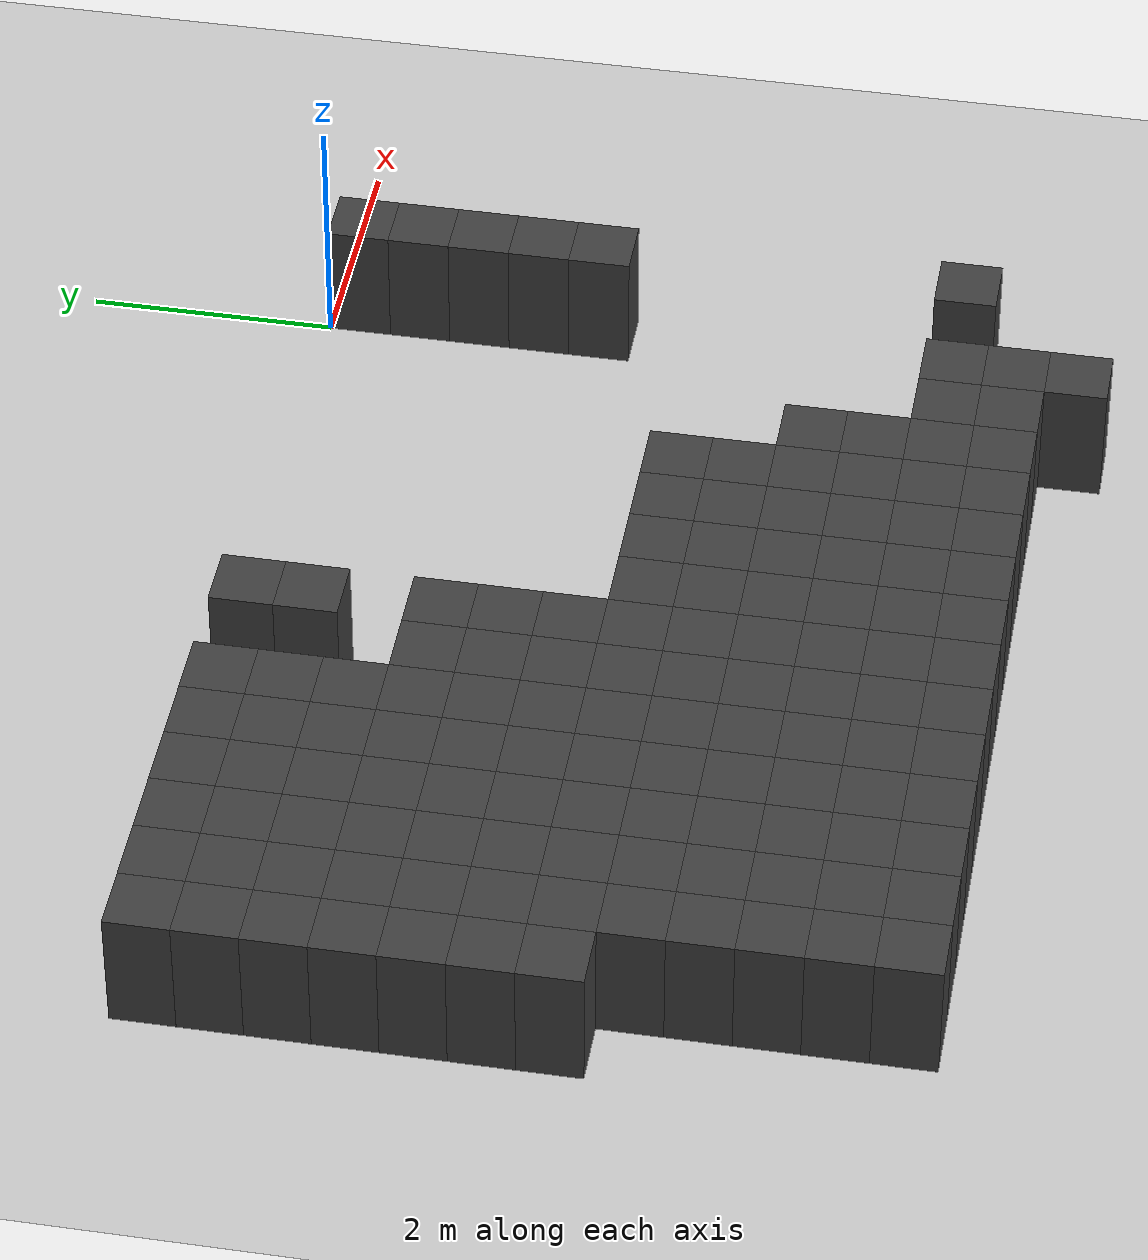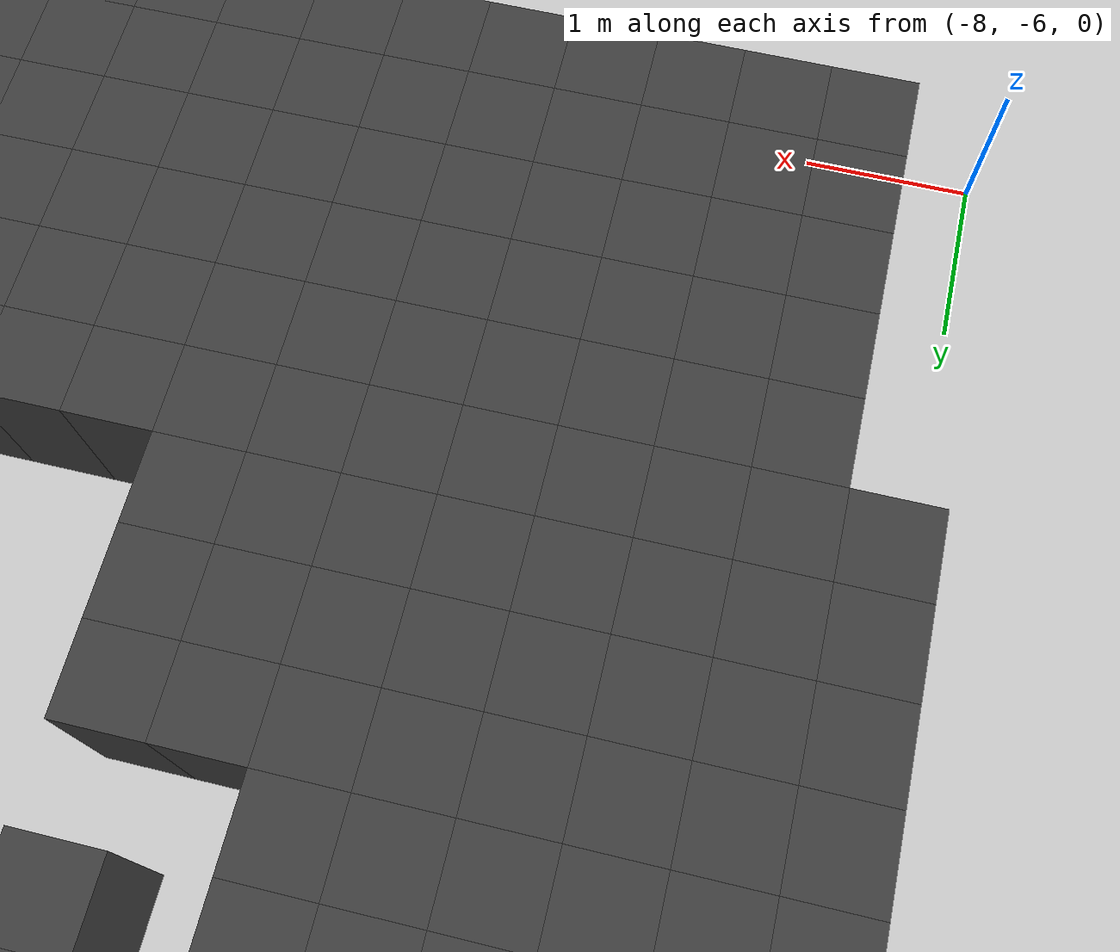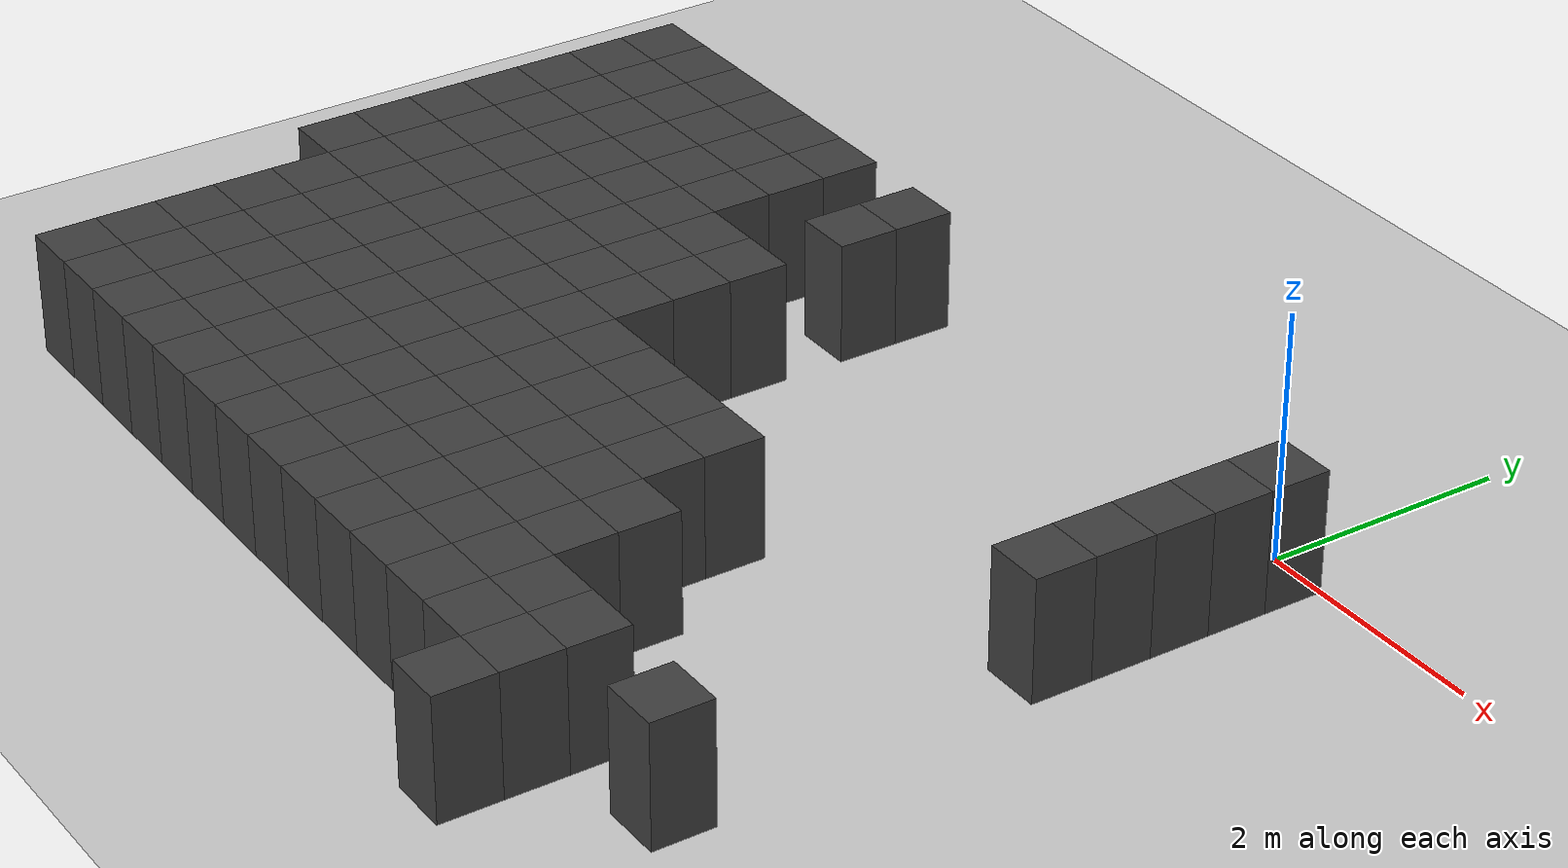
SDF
<sdf version="1.7">
 <world name="map_11779">
  <model name="ground_plane">
   <static>true</static>
   <link name="link">
    <collision name="collision">
     <geometry><plane><normal>0 0 1</normal><size>200 200</size></plane></geometry>
    </collision>
    <visual name="visual">
     <geometry><plane><normal>0 0 1</normal><size>200 200</size></plane></geometry>
     <material><ambient>0.8 0.8 0.8 1</ambient><diffuse>0.8 0.8 0.8 1</diffuse></material>
    </visual>
   </link>
  </model>
  <model name="maze_environment">
   <static>true</static>
   <link name="wall_1022">
    <pose>-7.750 -0.250 0.500 0 0 0</pose>
    <collision name="col"><geometry><box><size>0.5 0.5 1.0</size></box></geometry></collision>
    <visual name="vis">
     <geometry><box><size>0.5 0.5 1.0</size></box></geometry>
     <material><ambient>0.15 0.15 0.15 1</ambient><diffuse>0.25 0.25 0.25 1</diffuse></material>
    </visual>
   </link>
   <link name="wall_1023">
    <pose>-7.250 -0.250 0.500 0 0 0</pose>
    <collision name="col"><geometry><box><size>0.5 0.5 1.0</size></box></geometry></collision>
    <visual name="vis">
     <geometry><box><size>0.5 0.5 1.0</size></box></geometry>
     <material><ambient>0.15 0.15 0.15 1</ambient><diffuse>0.25 0.25 0.25 1</diffuse></material>
    </visual>
   </link>
   <link name="wall_1024">
    <pose>-6.750 -0.250 0.500 0 0 0</pose>
    <collision name="col"><geometry><box><size>0.5 0.5 1.0</size></box></geometry></collision>
    <visual name="vis">
     <geometry><box><size>0.5 0.5 1.0</size></box></geometry>
     <material><ambient>0.15 0.15 0.15 1</ambient><diffuse>0.25 0.25 0.25 1</diffuse></material>
    </visual>
   </link>
   <link name="wall_1025">
    <pose>-6.250 -0.250 0.500 0 0 0</pose>
    <collision name="col"><geometry><box><size>0.5 0.5 1.0</size></box></geometry></collision>
    <visual name="vis">
     <geometry><box><size>0.5 0.5 1.0</size></box></geometry>
     <material><ambient>0.15 0.15 0.15 1</ambient><diffuse>0.25 0.25 0.25 1</diffuse></material>
    </visual>
   </link>
   <link name="wall_1026">
    <pose>-5.750 -0.250 0.500 0 0 0</pose>
    <collision name="col"><geometry><box><size>0.5 0.5 1.0</size></box></geometry></collision>
    <visual name="vis">
     <geometry><box><size>0.5 0.5 1.0</size></box></geometry>
     <material><ambient>0.15 0.15 0.15 1</ambient><diffuse>0.25 0.25 0.25 1</diffuse></material>
    </visual>
   </link>
   <link name="wall_1027">
    <pose>-5.250 -0.250 0.500 0 0 0</pose>
    <collision name="col"><geometry><box><size>0.5 0.5 1.0</size></box></geometry></collision>
    <visual name="vis">
     <geometry><box><size>0.5 0.5 1.0</size></box></geometry>
     <material><ambient>0.15 0.15 0.15 1</ambient><diffuse>0.25 0.25 0.25 1</diffuse></material>
    </visual>
   </link>
   <link name="wall_1028">
    <pose>-4.250 -0.250 0.500 0 0 0</pose>
    <collision name="col"><geometry><box><size>0.5 0.5 1.0</size></box></geometry></collision>
    <visual name="vis">
     <geometry><box><size>0.5 0.5 1.0</size></box></geometry>
     <material><ambient>0.15 0.15 0.15 1</ambient><diffuse>0.25 0.25 0.25 1</diffuse></material>
    </visual>
   </link>
   <link name="wall_1029">
    <pose>0.250 -0.250 0.500 0 0 0</pose>
    <collision name="col"><geometry><box><size>0.5 0.5 1.0</size></box></geometry></collision>
    <visual name="vis">
     <geometry><box><size>0.5 0.5 1.0</size></box></geometry>
     <material><ambient>0.15 0.15 0.15 1</ambient><diffuse>0.25 0.25 0.25 1</diffuse></material>
    </visual>
   </link>
   <link name="wall_1063">
    <pose>-7.750 -0.750 0.500 0 0 0</pose>
    <collision name="col"><geometry><box><size>0.5 0.5 1.0</size></box></geometry></collision>
    <visual name="vis">
     <geometry><box><size>0.5 0.5 1.0</size></box></geometry>
     <material><ambient>0.15 0.15 0.15 1</ambient><diffuse>0.25 0.25 0.25 1</diffuse></material>
    </visual>
   </link>
   <link name="wall_1064">
    <pose>-7.250 -0.750 0.500 0 0 0</pose>
    <collision name="col"><geometry><box><size>0.5 0.5 1.0</size></box></geometry></collision>
    <visual name="vis">
     <geometry><box><size>0.5 0.5 1.0</size></box></geometry>
     <material><ambient>0.15 0.15 0.15 1</ambient><diffuse>0.25 0.25 0.25 1</diffuse></material>
    </visual>
   </link>
   <link name="wall_1065">
    <pose>-6.750 -0.750 0.500 0 0 0</pose>
    <collision name="col"><geometry><box><size>0.5 0.5 1.0</size></box></geometry></collision>
    <visual name="vis">
     <geometry><box><size>0.5 0.5 1.0</size></box></geometry>
     <material><ambient>0.15 0.15 0.15 1</ambient><diffuse>0.25 0.25 0.25 1</diffuse></material>
    </visual>
   </link>
   <link name="wall_1066">
    <pose>-6.250 -0.750 0.500 0 0 0</pose>
    <collision name="col"><geometry><box><size>0.5 0.5 1.0</size></box></geometry></collision>
    <visual name="vis">
     <geometry><box><size>0.5 0.5 1.0</size></box></geometry>
     <material><ambient>0.15 0.15 0.15 1</ambient><diffuse>0.25 0.25 0.25 1</diffuse></material>
    </visual>
   </link>
   <link name="wall_1067">
    <pose>-5.750 -0.750 0.500 0 0 0</pose>
    <collision name="col"><geometry><box><size>0.5 0.5 1.0</size></box></geometry></collision>
    <visual name="vis">
     <geometry><box><size>0.5 0.5 1.0</size></box></geometry>
     <material><ambient>0.15 0.15 0.15 1</ambient><diffuse>0.25 0.25 0.25 1</diffuse></material>
    </visual>
   </link>
   <link name="wall_1068">
    <pose>-5.250 -0.750 0.500 0 0 0</pose>
    <collision name="col"><geometry><box><size>0.5 0.5 1.0</size></box></geometry></collision>
    <visual name="vis">
     <geometry><box><size>0.5 0.5 1.0</size></box></geometry>
     <material><ambient>0.15 0.15 0.15 1</ambient><diffuse>0.25 0.25 0.25 1</diffuse></material>
    </visual>
   </link>
   <link name="wall_1069">
    <pose>-4.250 -0.750 0.500 0 0 0</pose>
    <collision name="col"><geometry><box><size>0.5 0.5 1.0</size></box></geometry></collision>
    <visual name="vis">
     <geometry><box><size>0.5 0.5 1.0</size></box></geometry>
     <material><ambient>0.15 0.15 0.15 1</ambient><diffuse>0.25 0.25 0.25 1</diffuse></material>
    </visual>
   </link>
   <link name="wall_1070">
    <pose>0.250 -0.750 0.500 0 0 0</pose>
    <collision name="col"><geometry><box><size>0.5 0.5 1.0</size></box></geometry></collision>
    <visual name="vis">
     <geometry><box><size>0.5 0.5 1.0</size></box></geometry>
     <material><ambient>0.15 0.15 0.15 1</ambient><diffuse>0.25 0.25 0.25 1</diffuse></material>
    </visual>
   </link>
   <link name="wall_1104">
    <pose>-7.750 -1.250 0.500 0 0 0</pose>
    <collision name="col"><geometry><box><size>0.5 0.5 1.0</size></box></geometry></collision>
    <visual name="vis">
     <geometry><box><size>0.5 0.5 1.0</size></box></geometry>
     <material><ambient>0.15 0.15 0.15 1</ambient><diffuse>0.25 0.25 0.25 1</diffuse></material>
    </visual>
   </link>
   <link name="wall_1105">
    <pose>-7.250 -1.250 0.500 0 0 0</pose>
    <collision name="col"><geometry><box><size>0.5 0.5 1.0</size></box></geometry></collision>
    <visual name="vis">
     <geometry><box><size>0.5 0.5 1.0</size></box></geometry>
     <material><ambient>0.15 0.15 0.15 1</ambient><diffuse>0.25 0.25 0.25 1</diffuse></material>
    </visual>
   </link>
   <link name="wall_1106">
    <pose>-6.750 -1.250 0.500 0 0 0</pose>
    <collision name="col"><geometry><box><size>0.5 0.5 1.0</size></box></geometry></collision>
    <visual name="vis">
     <geometry><box><size>0.5 0.5 1.0</size></box></geometry>
     <material><ambient>0.15 0.15 0.15 1</ambient><diffuse>0.25 0.25 0.25 1</diffuse></material>
    </visual>
   </link>
   <link name="wall_1107">
    <pose>-6.250 -1.250 0.500 0 0 0</pose>
    <collision name="col"><geometry><box><size>0.5 0.5 1.0</size></box></geometry></collision>
    <visual name="vis">
     <geometry><box><size>0.5 0.5 1.0</size></box></geometry>
     <material><ambient>0.15 0.15 0.15 1</ambient><diffuse>0.25 0.25 0.25 1</diffuse></material>
    </visual>
   </link>
   <link name="wall_1108">
    <pose>-5.750 -1.250 0.500 0 0 0</pose>
    <collision name="col"><geometry><box><size>0.5 0.5 1.0</size></box></geometry></collision>
    <visual name="vis">
     <geometry><box><size>0.5 0.5 1.0</size></box></geometry>
     <material><ambient>0.15 0.15 0.15 1</ambient><diffuse>0.25 0.25 0.25 1</diffuse></material>
    </visual>
   </link>
   <link name="wall_1109">
    <pose>-5.250 -1.250 0.500 0 0 0</pose>
    <collision name="col"><geometry><box><size>0.5 0.5 1.0</size></box></geometry></collision>
    <visual name="vis">
     <geometry><box><size>0.5 0.5 1.0</size></box></geometry>
     <material><ambient>0.15 0.15 0.15 1</ambient><diffuse>0.25 0.25 0.25 1</diffuse></material>
    </visual>
   </link>
   <link name="wall_1110">
    <pose>0.250 -1.250 0.500 0 0 0</pose>
    <collision name="col"><geometry><box><size>0.5 0.5 1.0</size></box></geometry></collision>
    <visual name="vis">
     <geometry><box><size>0.5 0.5 1.0</size></box></geometry>
     <material><ambient>0.15 0.15 0.15 1</ambient><diffuse>0.25 0.25 0.25 1</diffuse></material>
    </visual>
   </link>
   <link name="wall_1144">
    <pose>-7.750 -1.750 0.500 0 0 0</pose>
    <collision name="col"><geometry><box><size>0.5 0.5 1.0</size></box></geometry></collision>
    <visual name="vis">
     <geometry><box><size>0.5 0.5 1.0</size></box></geometry>
     <material><ambient>0.15 0.15 0.15 1</ambient><diffuse>0.25 0.25 0.25 1</diffuse></material>
    </visual>
   </link>
   <link name="wall_1145">
    <pose>-7.250 -1.750 0.500 0 0 0</pose>
    <collision name="col"><geometry><box><size>0.5 0.5 1.0</size></box></geometry></collision>
    <visual name="vis">
     <geometry><box><size>0.5 0.5 1.0</size></box></geometry>
     <material><ambient>0.15 0.15 0.15 1</ambient><diffuse>0.25 0.25 0.25 1</diffuse></material>
    </visual>
   </link>
   <link name="wall_1146">
    <pose>-6.750 -1.750 0.500 0 0 0</pose>
    <collision name="col"><geometry><box><size>0.5 0.5 1.0</size></box></geometry></collision>
    <visual name="vis">
     <geometry><box><size>0.5 0.5 1.0</size></box></geometry>
     <material><ambient>0.15 0.15 0.15 1</ambient><diffuse>0.25 0.25 0.25 1</diffuse></material>
    </visual>
   </link>
   <link name="wall_1147">
    <pose>-6.250 -1.750 0.500 0 0 0</pose>
    <collision name="col"><geometry><box><size>0.5 0.5 1.0</size></box></geometry></collision>
    <visual name="vis">
     <geometry><box><size>0.5 0.5 1.0</size></box></geometry>
     <material><ambient>0.15 0.15 0.15 1</ambient><diffuse>0.25 0.25 0.25 1</diffuse></material>
    </visual>
   </link>
   <link name="wall_1148">
    <pose>-5.750 -1.750 0.500 0 0 0</pose>
    <collision name="col"><geometry><box><size>0.5 0.5 1.0</size></box></geometry></collision>
    <visual name="vis">
     <geometry><box><size>0.5 0.5 1.0</size></box></geometry>
     <material><ambient>0.15 0.15 0.15 1</ambient><diffuse>0.25 0.25 0.25 1</diffuse></material>
    </visual>
   </link>
   <link name="wall_1149">
    <pose>-5.250 -1.750 0.500 0 0 0</pose>
    <collision name="col"><geometry><box><size>0.5 0.5 1.0</size></box></geometry></collision>
    <visual name="vis">
     <geometry><box><size>0.5 0.5 1.0</size></box></geometry>
     <material><ambient>0.15 0.15 0.15 1</ambient><diffuse>0.25 0.25 0.25 1</diffuse></material>
    </visual>
   </link>
   <link name="wall_1150">
    <pose>-4.750 -1.750 0.500 0 0 0</pose>
    <collision name="col"><geometry><box><size>0.5 0.5 1.0</size></box></geometry></collision>
    <visual name="vis">
     <geometry><box><size>0.5 0.5 1.0</size></box></geometry>
     <material><ambient>0.15 0.15 0.15 1</ambient><diffuse>0.25 0.25 0.25 1</diffuse></material>
    </visual>
   </link>
   <link name="wall_1151">
    <pose>-4.250 -1.750 0.500 0 0 0</pose>
    <collision name="col"><geometry><box><size>0.5 0.5 1.0</size></box></geometry></collision>
    <visual name="vis">
     <geometry><box><size>0.5 0.5 1.0</size></box></geometry>
     <material><ambient>0.15 0.15 0.15 1</ambient><diffuse>0.25 0.25 0.25 1</diffuse></material>
    </visual>
   </link>
   <link name="wall_1152">
    <pose>0.250 -1.750 0.500 0 0 0</pose>
    <collision name="col"><geometry><box><size>0.5 0.5 1.0</size></box></geometry></collision>
    <visual name="vis">
     <geometry><box><size>0.5 0.5 1.0</size></box></geometry>
     <material><ambient>0.15 0.15 0.15 1</ambient><diffuse>0.25 0.25 0.25 1</diffuse></material>
    </visual>
   </link>
   <link name="wall_1186">
    <pose>-7.750 -2.250 0.500 0 0 0</pose>
    <collision name="col"><geometry><box><size>0.5 0.5 1.0</size></box></geometry></collision>
    <visual name="vis">
     <geometry><box><size>0.5 0.5 1.0</size></box></geometry>
     <material><ambient>0.15 0.15 0.15 1</ambient><diffuse>0.25 0.25 0.25 1</diffuse></material>
    </visual>
   </link>
   <link name="wall_1187">
    <pose>-7.250 -2.250 0.500 0 0 0</pose>
    <collision name="col"><geometry><box><size>0.5 0.5 1.0</size></box></geometry></collision>
    <visual name="vis">
     <geometry><box><size>0.5 0.5 1.0</size></box></geometry>
     <material><ambient>0.15 0.15 0.15 1</ambient><diffuse>0.25 0.25 0.25 1</diffuse></material>
    </visual>
   </link>
   <link name="wall_1188">
    <pose>-6.750 -2.250 0.500 0 0 0</pose>
    <collision name="col"><geometry><box><size>0.5 0.5 1.0</size></box></geometry></collision>
    <visual name="vis">
     <geometry><box><size>0.5 0.5 1.0</size></box></geometry>
     <material><ambient>0.15 0.15 0.15 1</ambient><diffuse>0.25 0.25 0.25 1</diffuse></material>
    </visual>
   </link>
   <link name="wall_1189">
    <pose>-6.250 -2.250 0.500 0 0 0</pose>
    <collision name="col"><geometry><box><size>0.5 0.5 1.0</size></box></geometry></collision>
    <visual name="vis">
     <geometry><box><size>0.5 0.5 1.0</size></box></geometry>
     <material><ambient>0.15 0.15 0.15 1</ambient><diffuse>0.25 0.25 0.25 1</diffuse></material>
    </visual>
   </link>
   <link name="wall_1190">
    <pose>-5.750 -2.250 0.500 0 0 0</pose>
    <collision name="col"><geometry><box><size>0.5 0.5 1.0</size></box></geometry></collision>
    <visual name="vis">
     <geometry><box><size>0.5 0.5 1.0</size></box></geometry>
     <material><ambient>0.15 0.15 0.15 1</ambient><diffuse>0.25 0.25 0.25 1</diffuse></material>
    </visual>
   </link>
   <link name="wall_1191">
    <pose>-5.250 -2.250 0.500 0 0 0</pose>
    <collision name="col"><geometry><box><size>0.5 0.5 1.0</size></box></geometry></collision>
    <visual name="vis">
     <geometry><box><size>0.5 0.5 1.0</size></box></geometry>
     <material><ambient>0.15 0.15 0.15 1</ambient><diffuse>0.25 0.25 0.25 1</diffuse></material>
    </visual>
   </link>
   <link name="wall_1192">
    <pose>-4.750 -2.250 0.500 0 0 0</pose>
    <collision name="col"><geometry><box><size>0.5 0.5 1.0</size></box></geometry></collision>
    <visual name="vis">
     <geometry><box><size>0.5 0.5 1.0</size></box></geometry>
     <material><ambient>0.15 0.15 0.15 1</ambient><diffuse>0.25 0.25 0.25 1</diffuse></material>
    </visual>
   </link>
   <link name="wall_1193">
    <pose>-4.250 -2.250 0.500 0 0 0</pose>
    <collision name="col"><geometry><box><size>0.5 0.5 1.0</size></box></geometry></collision>
    <visual name="vis">
     <geometry><box><size>0.5 0.5 1.0</size></box></geometry>
     <material><ambient>0.15 0.15 0.15 1</ambient><diffuse>0.25 0.25 0.25 1</diffuse></material>
    </visual>
   </link>
   <link name="wall_1194">
    <pose>0.250 -2.250 0.500 0 0 0</pose>
    <collision name="col"><geometry><box><size>0.5 0.5 1.0</size></box></geometry></collision>
    <visual name="vis">
     <geometry><box><size>0.5 0.5 1.0</size></box></geometry>
     <material><ambient>0.15 0.15 0.15 1</ambient><diffuse>0.25 0.25 0.25 1</diffuse></material>
    </visual>
   </link>
   <link name="wall_1228">
    <pose>-7.750 -2.750 0.500 0 0 0</pose>
    <collision name="col"><geometry><box><size>0.5 0.5 1.0</size></box></geometry></collision>
    <visual name="vis">
     <geometry><box><size>0.5 0.5 1.0</size></box></geometry>
     <material><ambient>0.15 0.15 0.15 1</ambient><diffuse>0.25 0.25 0.25 1</diffuse></material>
    </visual>
   </link>
   <link name="wall_1229">
    <pose>-7.250 -2.750 0.500 0 0 0</pose>
    <collision name="col"><geometry><box><size>0.5 0.5 1.0</size></box></geometry></collision>
    <visual name="vis">
     <geometry><box><size>0.5 0.5 1.0</size></box></geometry>
     <material><ambient>0.15 0.15 0.15 1</ambient><diffuse>0.25 0.25 0.25 1</diffuse></material>
    </visual>
   </link>
   <link name="wall_1230">
    <pose>-6.750 -2.750 0.500 0 0 0</pose>
    <collision name="col"><geometry><box><size>0.5 0.5 1.0</size></box></geometry></collision>
    <visual name="vis">
     <geometry><box><size>0.5 0.5 1.0</size></box></geometry>
     <material><ambient>0.15 0.15 0.15 1</ambient><diffuse>0.25 0.25 0.25 1</diffuse></material>
    </visual>
   </link>
   <link name="wall_1231">
    <pose>-6.250 -2.750 0.500 0 0 0</pose>
    <collision name="col"><geometry><box><size>0.5 0.5 1.0</size></box></geometry></collision>
    <visual name="vis">
     <geometry><box><size>0.5 0.5 1.0</size></box></geometry>
     <material><ambient>0.15 0.15 0.15 1</ambient><diffuse>0.25 0.25 0.25 1</diffuse></material>
    </visual>
   </link>
   <link name="wall_1232">
    <pose>-5.750 -2.750 0.500 0 0 0</pose>
    <collision name="col"><geometry><box><size>0.5 0.5 1.0</size></box></geometry></collision>
    <visual name="vis">
     <geometry><box><size>0.5 0.5 1.0</size></box></geometry>
     <material><ambient>0.15 0.15 0.15 1</ambient><diffuse>0.25 0.25 0.25 1</diffuse></material>
    </visual>
   </link>
   <link name="wall_1233">
    <pose>-5.250 -2.750 0.500 0 0 0</pose>
    <collision name="col"><geometry><box><size>0.5 0.5 1.0</size></box></geometry></collision>
    <visual name="vis">
     <geometry><box><size>0.5 0.5 1.0</size></box></geometry>
     <material><ambient>0.15 0.15 0.15 1</ambient><diffuse>0.25 0.25 0.25 1</diffuse></material>
    </visual>
   </link>
   <link name="wall_1234">
    <pose>-4.750 -2.750 0.500 0 0 0</pose>
    <collision name="col"><geometry><box><size>0.5 0.5 1.0</size></box></geometry></collision>
    <visual name="vis">
     <geometry><box><size>0.5 0.5 1.0</size></box></geometry>
     <material><ambient>0.15 0.15 0.15 1</ambient><diffuse>0.25 0.25 0.25 1</diffuse></material>
    </visual>
   </link>
   <link name="wall_1235">
    <pose>-4.250 -2.750 0.500 0 0 0</pose>
    <collision name="col"><geometry><box><size>0.5 0.5 1.0</size></box></geometry></collision>
    <visual name="vis">
     <geometry><box><size>0.5 0.5 1.0</size></box></geometry>
     <material><ambient>0.15 0.15 0.15 1</ambient><diffuse>0.25 0.25 0.25 1</diffuse></material>
    </visual>
   </link>
   <link name="wall_1268">
    <pose>-7.750 -3.250 0.500 0 0 0</pose>
    <collision name="col"><geometry><box><size>0.5 0.5 1.0</size></box></geometry></collision>
    <visual name="vis">
     <geometry><box><size>0.5 0.5 1.0</size></box></geometry>
     <material><ambient>0.15 0.15 0.15 1</ambient><diffuse>0.25 0.25 0.25 1</diffuse></material>
    </visual>
   </link>
   <link name="wall_1269">
    <pose>-7.250 -3.250 0.500 0 0 0</pose>
    <collision name="col"><geometry><box><size>0.5 0.5 1.0</size></box></geometry></collision>
    <visual name="vis">
     <geometry><box><size>0.5 0.5 1.0</size></box></geometry>
     <material><ambient>0.15 0.15 0.15 1</ambient><diffuse>0.25 0.25 0.25 1</diffuse></material>
    </visual>
   </link>
   <link name="wall_1270">
    <pose>-6.750 -3.250 0.500 0 0 0</pose>
    <collision name="col"><geometry><box><size>0.5 0.5 1.0</size></box></geometry></collision>
    <visual name="vis">
     <geometry><box><size>0.5 0.5 1.0</size></box></geometry>
     <material><ambient>0.15 0.15 0.15 1</ambient><diffuse>0.25 0.25 0.25 1</diffuse></material>
    </visual>
   </link>
   <link name="wall_1271">
    <pose>-6.250 -3.250 0.500 0 0 0</pose>
    <collision name="col"><geometry><box><size>0.5 0.5 1.0</size></box></geometry></collision>
    <visual name="vis">
     <geometry><box><size>0.5 0.5 1.0</size></box></geometry>
     <material><ambient>0.15 0.15 0.15 1</ambient><diffuse>0.25 0.25 0.25 1</diffuse></material>
    </visual>
   </link>
   <link name="wall_1272">
    <pose>-5.750 -3.250 0.500 0 0 0</pose>
    <collision name="col"><geometry><box><size>0.5 0.5 1.0</size></box></geometry></collision>
    <visual name="vis">
     <geometry><box><size>0.5 0.5 1.0</size></box></geometry>
     <material><ambient>0.15 0.15 0.15 1</ambient><diffuse>0.25 0.25 0.25 1</diffuse></material>
    </visual>
   </link>
   <link name="wall_1273">
    <pose>-5.250 -3.250 0.500 0 0 0</pose>
    <collision name="col"><geometry><box><size>0.5 0.5 1.0</size></box></geometry></collision>
    <visual name="vis">
     <geometry><box><size>0.5 0.5 1.0</size></box></geometry>
     <material><ambient>0.15 0.15 0.15 1</ambient><diffuse>0.25 0.25 0.25 1</diffuse></material>
    </visual>
   </link>
   <link name="wall_1274">
    <pose>-4.750 -3.250 0.500 0 0 0</pose>
    <collision name="col"><geometry><box><size>0.5 0.5 1.0</size></box></geometry></collision>
    <visual name="vis">
     <geometry><box><size>0.5 0.5 1.0</size></box></geometry>
     <material><ambient>0.15 0.15 0.15 1</ambient><diffuse>0.25 0.25 0.25 1</diffuse></material>
    </visual>
   </link>
   <link name="wall_1275">
    <pose>-4.250 -3.250 0.500 0 0 0</pose>
    <collision name="col"><geometry><box><size>0.5 0.5 1.0</size></box></geometry></collision>
    <visual name="vis">
     <geometry><box><size>0.5 0.5 1.0</size></box></geometry>
     <material><ambient>0.15 0.15 0.15 1</ambient><diffuse>0.25 0.25 0.25 1</diffuse></material>
    </visual>
   </link>
   <link name="wall_1276">
    <pose>-3.750 -3.250 0.500 0 0 0</pose>
    <collision name="col"><geometry><box><size>0.5 0.5 1.0</size></box></geometry></collision>
    <visual name="vis">
     <geometry><box><size>0.5 0.5 1.0</size></box></geometry>
     <material><ambient>0.15 0.15 0.15 1</ambient><diffuse>0.25 0.25 0.25 1</diffuse></material>
    </visual>
   </link>
   <link name="wall_1277">
    <pose>-3.250 -3.250 0.500 0 0 0</pose>
    <collision name="col"><geometry><box><size>0.5 0.5 1.0</size></box></geometry></collision>
    <visual name="vis">
     <geometry><box><size>0.5 0.5 1.0</size></box></geometry>
     <material><ambient>0.15 0.15 0.15 1</ambient><diffuse>0.25 0.25 0.25 1</diffuse></material>
    </visual>
   </link>
   <link name="wall_1278">
    <pose>-2.750 -3.250 0.500 0 0 0</pose>
    <collision name="col"><geometry><box><size>0.5 0.5 1.0</size></box></geometry></collision>
    <visual name="vis">
     <geometry><box><size>0.5 0.5 1.0</size></box></geometry>
     <material><ambient>0.15 0.15 0.15 1</ambient><diffuse>0.25 0.25 0.25 1</diffuse></material>
    </visual>
   </link>
   <link name="wall_1279">
    <pose>-2.250 -3.250 0.500 0 0 0</pose>
    <collision name="col"><geometry><box><size>0.5 0.5 1.0</size></box></geometry></collision>
    <visual name="vis">
     <geometry><box><size>0.5 0.5 1.0</size></box></geometry>
     <material><ambient>0.15 0.15 0.15 1</ambient><diffuse>0.25 0.25 0.25 1</diffuse></material>
    </visual>
   </link>
   <link name="wall_1313">
    <pose>-7.250 -3.750 0.500 0 0 0</pose>
    <collision name="col"><geometry><box><size>0.5 0.5 1.0</size></box></geometry></collision>
    <visual name="vis">
     <geometry><box><size>0.5 0.5 1.0</size></box></geometry>
     <material><ambient>0.15 0.15 0.15 1</ambient><diffuse>0.25 0.25 0.25 1</diffuse></material>
    </visual>
   </link>
   <link name="wall_1314">
    <pose>-6.750 -3.750 0.500 0 0 0</pose>
    <collision name="col"><geometry><box><size>0.5 0.5 1.0</size></box></geometry></collision>
    <visual name="vis">
     <geometry><box><size>0.5 0.5 1.0</size></box></geometry>
     <material><ambient>0.15 0.15 0.15 1</ambient><diffuse>0.25 0.25 0.25 1</diffuse></material>
    </visual>
   </link>
   <link name="wall_1315">
    <pose>-6.250 -3.750 0.500 0 0 0</pose>
    <collision name="col"><geometry><box><size>0.5 0.5 1.0</size></box></geometry></collision>
    <visual name="vis">
     <geometry><box><size>0.5 0.5 1.0</size></box></geometry>
     <material><ambient>0.15 0.15 0.15 1</ambient><diffuse>0.25 0.25 0.25 1</diffuse></material>
    </visual>
   </link>
   <link name="wall_1316">
    <pose>-5.750 -3.750 0.500 0 0 0</pose>
    <collision name="col"><geometry><box><size>0.5 0.5 1.0</size></box></geometry></collision>
    <visual name="vis">
     <geometry><box><size>0.5 0.5 1.0</size></box></geometry>
     <material><ambient>0.15 0.15 0.15 1</ambient><diffuse>0.25 0.25 0.25 1</diffuse></material>
    </visual>
   </link>
   <link name="wall_1317">
    <pose>-5.250 -3.750 0.500 0 0 0</pose>
    <collision name="col"><geometry><box><size>0.5 0.5 1.0</size></box></geometry></collision>
    <visual name="vis">
     <geometry><box><size>0.5 0.5 1.0</size></box></geometry>
     <material><ambient>0.15 0.15 0.15 1</ambient><diffuse>0.25 0.25 0.25 1</diffuse></material>
    </visual>
   </link>
   <link name="wall_1318">
    <pose>-4.750 -3.750 0.500 0 0 0</pose>
    <collision name="col"><geometry><box><size>0.5 0.5 1.0</size></box></geometry></collision>
    <visual name="vis">
     <geometry><box><size>0.5 0.5 1.0</size></box></geometry>
     <material><ambient>0.15 0.15 0.15 1</ambient><diffuse>0.25 0.25 0.25 1</diffuse></material>
    </visual>
   </link>
   <link name="wall_1319">
    <pose>-4.250 -3.750 0.500 0 0 0</pose>
    <collision name="col"><geometry><box><size>0.5 0.5 1.0</size></box></geometry></collision>
    <visual name="vis">
     <geometry><box><size>0.5 0.5 1.0</size></box></geometry>
     <material><ambient>0.15 0.15 0.15 1</ambient><diffuse>0.25 0.25 0.25 1</diffuse></material>
    </visual>
   </link>
   <link name="wall_1320">
    <pose>-3.750 -3.750 0.500 0 0 0</pose>
    <collision name="col"><geometry><box><size>0.5 0.5 1.0</size></box></geometry></collision>
    <visual name="vis">
     <geometry><box><size>0.5 0.5 1.0</size></box></geometry>
     <material><ambient>0.15 0.15 0.15 1</ambient><diffuse>0.25 0.25 0.25 1</diffuse></material>
    </visual>
   </link>
   <link name="wall_1321">
    <pose>-3.250 -3.750 0.500 0 0 0</pose>
    <collision name="col"><geometry><box><size>0.5 0.5 1.0</size></box></geometry></collision>
    <visual name="vis">
     <geometry><box><size>0.5 0.5 1.0</size></box></geometry>
     <material><ambient>0.15 0.15 0.15 1</ambient><diffuse>0.25 0.25 0.25 1</diffuse></material>
    </visual>
   </link>
   <link name="wall_1322">
    <pose>-2.750 -3.750 0.500 0 0 0</pose>
    <collision name="col"><geometry><box><size>0.5 0.5 1.0</size></box></geometry></collision>
    <visual name="vis">
     <geometry><box><size>0.5 0.5 1.0</size></box></geometry>
     <material><ambient>0.15 0.15 0.15 1</ambient><diffuse>0.25 0.25 0.25 1</diffuse></material>
    </visual>
   </link>
   <link name="wall_1323">
    <pose>-2.250 -3.750 0.500 0 0 0</pose>
    <collision name="col"><geometry><box><size>0.5 0.5 1.0</size></box></geometry></collision>
    <visual name="vis">
     <geometry><box><size>0.5 0.5 1.0</size></box></geometry>
     <material><ambient>0.15 0.15 0.15 1</ambient><diffuse>0.25 0.25 0.25 1</diffuse></material>
    </visual>
   </link>
   <link name="wall_1357">
    <pose>-7.250 -4.250 0.500 0 0 0</pose>
    <collision name="col"><geometry><box><size>0.5 0.5 1.0</size></box></geometry></collision>
    <visual name="vis">
     <geometry><box><size>0.5 0.5 1.0</size></box></geometry>
     <material><ambient>0.15 0.15 0.15 1</ambient><diffuse>0.25 0.25 0.25 1</diffuse></material>
    </visual>
   </link>
   <link name="wall_1358">
    <pose>-6.750 -4.250 0.500 0 0 0</pose>
    <collision name="col"><geometry><box><size>0.5 0.5 1.0</size></box></geometry></collision>
    <visual name="vis">
     <geometry><box><size>0.5 0.5 1.0</size></box></geometry>
     <material><ambient>0.15 0.15 0.15 1</ambient><diffuse>0.25 0.25 0.25 1</diffuse></material>
    </visual>
   </link>
   <link name="wall_1359">
    <pose>-6.250 -4.250 0.500 0 0 0</pose>
    <collision name="col"><geometry><box><size>0.5 0.5 1.0</size></box></geometry></collision>
    <visual name="vis">
     <geometry><box><size>0.5 0.5 1.0</size></box></geometry>
     <material><ambient>0.15 0.15 0.15 1</ambient><diffuse>0.25 0.25 0.25 1</diffuse></material>
    </visual>
   </link>
   <link name="wall_1360">
    <pose>-5.750 -4.250 0.500 0 0 0</pose>
    <collision name="col"><geometry><box><size>0.5 0.5 1.0</size></box></geometry></collision>
    <visual name="vis">
     <geometry><box><size>0.5 0.5 1.0</size></box></geometry>
     <material><ambient>0.15 0.15 0.15 1</ambient><diffuse>0.25 0.25 0.25 1</diffuse></material>
    </visual>
   </link>
   <link name="wall_1361">
    <pose>-5.250 -4.250 0.500 0 0 0</pose>
    <collision name="col"><geometry><box><size>0.5 0.5 1.0</size></box></geometry></collision>
    <visual name="vis">
     <geometry><box><size>0.5 0.5 1.0</size></box></geometry>
     <material><ambient>0.15 0.15 0.15 1</ambient><diffuse>0.25 0.25 0.25 1</diffuse></material>
    </visual>
   </link>
   <link name="wall_1362">
    <pose>-4.750 -4.250 0.500 0 0 0</pose>
    <collision name="col"><geometry><box><size>0.5 0.5 1.0</size></box></geometry></collision>
    <visual name="vis">
     <geometry><box><size>0.5 0.5 1.0</size></box></geometry>
     <material><ambient>0.15 0.15 0.15 1</ambient><diffuse>0.25 0.25 0.25 1</diffuse></material>
    </visual>
   </link>
   <link name="wall_1363">
    <pose>-4.250 -4.250 0.500 0 0 0</pose>
    <collision name="col"><geometry><box><size>0.5 0.5 1.0</size></box></geometry></collision>
    <visual name="vis">
     <geometry><box><size>0.5 0.5 1.0</size></box></geometry>
     <material><ambient>0.15 0.15 0.15 1</ambient><diffuse>0.25 0.25 0.25 1</diffuse></material>
    </visual>
   </link>
   <link name="wall_1364">
    <pose>-3.750 -4.250 0.500 0 0 0</pose>
    <collision name="col"><geometry><box><size>0.5 0.5 1.0</size></box></geometry></collision>
    <visual name="vis">
     <geometry><box><size>0.5 0.5 1.0</size></box></geometry>
     <material><ambient>0.15 0.15 0.15 1</ambient><diffuse>0.25 0.25 0.25 1</diffuse></material>
    </visual>
   </link>
   <link name="wall_1365">
    <pose>-3.250 -4.250 0.500 0 0 0</pose>
    <collision name="col"><geometry><box><size>0.5 0.5 1.0</size></box></geometry></collision>
    <visual name="vis">
     <geometry><box><size>0.5 0.5 1.0</size></box></geometry>
     <material><ambient>0.15 0.15 0.15 1</ambient><diffuse>0.25 0.25 0.25 1</diffuse></material>
    </visual>
   </link>
   <link name="wall_1366">
    <pose>-2.750 -4.250 0.500 0 0 0</pose>
    <collision name="col"><geometry><box><size>0.5 0.5 1.0</size></box></geometry></collision>
    <visual name="vis">
     <geometry><box><size>0.5 0.5 1.0</size></box></geometry>
     <material><ambient>0.15 0.15 0.15 1</ambient><diffuse>0.25 0.25 0.25 1</diffuse></material>
    </visual>
   </link>
   <link name="wall_1367">
    <pose>-2.250 -4.250 0.500 0 0 0</pose>
    <collision name="col"><geometry><box><size>0.5 0.5 1.0</size></box></geometry></collision>
    <visual name="vis">
     <geometry><box><size>0.5 0.5 1.0</size></box></geometry>
     <material><ambient>0.15 0.15 0.15 1</ambient><diffuse>0.25 0.25 0.25 1</diffuse></material>
    </visual>
   </link>
   <link name="wall_1368">
    <pose>-1.750 -4.250 0.500 0 0 0</pose>
    <collision name="col"><geometry><box><size>0.5 0.5 1.0</size></box></geometry></collision>
    <visual name="vis">
     <geometry><box><size>0.5 0.5 1.0</size></box></geometry>
     <material><ambient>0.15 0.15 0.15 1</ambient><diffuse>0.25 0.25 0.25 1</diffuse></material>
    </visual>
   </link>
   <link name="wall_1402">
    <pose>-7.250 -4.750 0.500 0 0 0</pose>
    <collision name="col"><geometry><box><size>0.5 0.5 1.0</size></box></geometry></collision>
    <visual name="vis">
     <geometry><box><size>0.5 0.5 1.0</size></box></geometry>
     <material><ambient>0.15 0.15 0.15 1</ambient><diffuse>0.25 0.25 0.25 1</diffuse></material>
    </visual>
   </link>
   <link name="wall_1403">
    <pose>-6.750 -4.750 0.500 0 0 0</pose>
    <collision name="col"><geometry><box><size>0.5 0.5 1.0</size></box></geometry></collision>
    <visual name="vis">
     <geometry><box><size>0.5 0.5 1.0</size></box></geometry>
     <material><ambient>0.15 0.15 0.15 1</ambient><diffuse>0.25 0.25 0.25 1</diffuse></material>
    </visual>
   </link>
   <link name="wall_1404">
    <pose>-6.250 -4.750 0.500 0 0 0</pose>
    <collision name="col"><geometry><box><size>0.5 0.5 1.0</size></box></geometry></collision>
    <visual name="vis">
     <geometry><box><size>0.5 0.5 1.0</size></box></geometry>
     <material><ambient>0.15 0.15 0.15 1</ambient><diffuse>0.25 0.25 0.25 1</diffuse></material>
    </visual>
   </link>
   <link name="wall_1405">
    <pose>-5.750 -4.750 0.500 0 0 0</pose>
    <collision name="col"><geometry><box><size>0.5 0.5 1.0</size></box></geometry></collision>
    <visual name="vis">
     <geometry><box><size>0.5 0.5 1.0</size></box></geometry>
     <material><ambient>0.15 0.15 0.15 1</ambient><diffuse>0.25 0.25 0.25 1</diffuse></material>
    </visual>
   </link>
   <link name="wall_1406">
    <pose>-5.250 -4.750 0.500 0 0 0</pose>
    <collision name="col"><geometry><box><size>0.5 0.5 1.0</size></box></geometry></collision>
    <visual name="vis">
     <geometry><box><size>0.5 0.5 1.0</size></box></geometry>
     <material><ambient>0.15 0.15 0.15 1</ambient><diffuse>0.25 0.25 0.25 1</diffuse></material>
    </visual>
   </link>
   <link name="wall_1407">
    <pose>-4.750 -4.750 0.500 0 0 0</pose>
    <collision name="col"><geometry><box><size>0.5 0.5 1.0</size></box></geometry></collision>
    <visual name="vis">
     <geometry><box><size>0.5 0.5 1.0</size></box></geometry>
     <material><ambient>0.15 0.15 0.15 1</ambient><diffuse>0.25 0.25 0.25 1</diffuse></material>
    </visual>
   </link>
   <link name="wall_1408">
    <pose>-4.250 -4.750 0.500 0 0 0</pose>
    <collision name="col"><geometry><box><size>0.5 0.5 1.0</size></box></geometry></collision>
    <visual name="vis">
     <geometry><box><size>0.5 0.5 1.0</size></box></geometry>
     <material><ambient>0.15 0.15 0.15 1</ambient><diffuse>0.25 0.25 0.25 1</diffuse></material>
    </visual>
   </link>
   <link name="wall_1409">
    <pose>-3.750 -4.750 0.500 0 0 0</pose>
    <collision name="col"><geometry><box><size>0.5 0.5 1.0</size></box></geometry></collision>
    <visual name="vis">
     <geometry><box><size>0.5 0.5 1.0</size></box></geometry>
     <material><ambient>0.15 0.15 0.15 1</ambient><diffuse>0.25 0.25 0.25 1</diffuse></material>
    </visual>
   </link>
   <link name="wall_1410">
    <pose>-3.250 -4.750 0.500 0 0 0</pose>
    <collision name="col"><geometry><box><size>0.5 0.5 1.0</size></box></geometry></collision>
    <visual name="vis">
     <geometry><box><size>0.5 0.5 1.0</size></box></geometry>
     <material><ambient>0.15 0.15 0.15 1</ambient><diffuse>0.25 0.25 0.25 1</diffuse></material>
    </visual>
   </link>
   <link name="wall_1411">
    <pose>-2.750 -4.750 0.500 0 0 0</pose>
    <collision name="col"><geometry><box><size>0.5 0.5 1.0</size></box></geometry></collision>
    <visual name="vis">
     <geometry><box><size>0.5 0.5 1.0</size></box></geometry>
     <material><ambient>0.15 0.15 0.15 1</ambient><diffuse>0.25 0.25 0.25 1</diffuse></material>
    </visual>
   </link>
   <link name="wall_1412">
    <pose>-2.250 -4.750 0.500 0 0 0</pose>
    <collision name="col"><geometry><box><size>0.5 0.5 1.0</size></box></geometry></collision>
    <visual name="vis">
     <geometry><box><size>0.5 0.5 1.0</size></box></geometry>
     <material><ambient>0.15 0.15 0.15 1</ambient><diffuse>0.25 0.25 0.25 1</diffuse></material>
    </visual>
   </link>
   <link name="wall_1413">
    <pose>-1.750 -4.750 0.500 0 0 0</pose>
    <collision name="col"><geometry><box><size>0.5 0.5 1.0</size></box></geometry></collision>
    <visual name="vis">
     <geometry><box><size>0.5 0.5 1.0</size></box></geometry>
     <material><ambient>0.15 0.15 0.15 1</ambient><diffuse>0.25 0.25 0.25 1</diffuse></material>
    </visual>
   </link>
   <link name="wall_1447">
    <pose>-7.250 -5.250 0.500 0 0 0</pose>
    <collision name="col"><geometry><box><size>0.5 0.5 1.0</size></box></geometry></collision>
    <visual name="vis">
     <geometry><box><size>0.5 0.5 1.0</size></box></geometry>
     <material><ambient>0.15 0.15 0.15 1</ambient><diffuse>0.25 0.25 0.25 1</diffuse></material>
    </visual>
   </link>
   <link name="wall_1448">
    <pose>-6.750 -5.250 0.500 0 0 0</pose>
    <collision name="col"><geometry><box><size>0.5 0.5 1.0</size></box></geometry></collision>
    <visual name="vis">
     <geometry><box><size>0.5 0.5 1.0</size></box></geometry>
     <material><ambient>0.15 0.15 0.15 1</ambient><diffuse>0.25 0.25 0.25 1</diffuse></material>
    </visual>
   </link>
   <link name="wall_1449">
    <pose>-6.250 -5.250 0.500 0 0 0</pose>
    <collision name="col"><geometry><box><size>0.5 0.5 1.0</size></box></geometry></collision>
    <visual name="vis">
     <geometry><box><size>0.5 0.5 1.0</size></box></geometry>
     <material><ambient>0.15 0.15 0.15 1</ambient><diffuse>0.25 0.25 0.25 1</diffuse></material>
    </visual>
   </link>
   <link name="wall_1450">
    <pose>-5.750 -5.250 0.500 0 0 0</pose>
    <collision name="col"><geometry><box><size>0.5 0.5 1.0</size></box></geometry></collision>
    <visual name="vis">
     <geometry><box><size>0.5 0.5 1.0</size></box></geometry>
     <material><ambient>0.15 0.15 0.15 1</ambient><diffuse>0.25 0.25 0.25 1</diffuse></material>
    </visual>
   </link>
   <link name="wall_1451">
    <pose>-5.250 -5.250 0.500 0 0 0</pose>
    <collision name="col"><geometry><box><size>0.5 0.5 1.0</size></box></geometry></collision>
    <visual name="vis">
     <geometry><box><size>0.5 0.5 1.0</size></box></geometry>
     <material><ambient>0.15 0.15 0.15 1</ambient><diffuse>0.25 0.25 0.25 1</diffuse></material>
    </visual>
   </link>
   <link name="wall_1452">
    <pose>-4.750 -5.250 0.500 0 0 0</pose>
    <collision name="col"><geometry><box><size>0.5 0.5 1.0</size></box></geometry></collision>
    <visual name="vis">
     <geometry><box><size>0.5 0.5 1.0</size></box></geometry>
     <material><ambient>0.15 0.15 0.15 1</ambient><diffuse>0.25 0.25 0.25 1</diffuse></material>
    </visual>
   </link>
   <link name="wall_1453">
    <pose>-4.250 -5.250 0.500 0 0 0</pose>
    <collision name="col"><geometry><box><size>0.5 0.5 1.0</size></box></geometry></collision>
    <visual name="vis">
     <geometry><box><size>0.5 0.5 1.0</size></box></geometry>
     <material><ambient>0.15 0.15 0.15 1</ambient><diffuse>0.25 0.25 0.25 1</diffuse></material>
    </visual>
   </link>
   <link name="wall_1454">
    <pose>-3.750 -5.250 0.500 0 0 0</pose>
    <collision name="col"><geometry><box><size>0.5 0.5 1.0</size></box></geometry></collision>
    <visual name="vis">
     <geometry><box><size>0.5 0.5 1.0</size></box></geometry>
     <material><ambient>0.15 0.15 0.15 1</ambient><diffuse>0.25 0.25 0.25 1</diffuse></material>
    </visual>
   </link>
   <link name="wall_1455">
    <pose>-3.250 -5.250 0.500 0 0 0</pose>
    <collision name="col"><geometry><box><size>0.5 0.5 1.0</size></box></geometry></collision>
    <visual name="vis">
     <geometry><box><size>0.5 0.5 1.0</size></box></geometry>
     <material><ambient>0.15 0.15 0.15 1</ambient><diffuse>0.25 0.25 0.25 1</diffuse></material>
    </visual>
   </link>
   <link name="wall_1456">
    <pose>-2.750 -5.250 0.500 0 0 0</pose>
    <collision name="col"><geometry><box><size>0.5 0.5 1.0</size></box></geometry></collision>
    <visual name="vis">
     <geometry><box><size>0.5 0.5 1.0</size></box></geometry>
     <material><ambient>0.15 0.15 0.15 1</ambient><diffuse>0.25 0.25 0.25 1</diffuse></material>
    </visual>
   </link>
   <link name="wall_1457">
    <pose>-2.250 -5.250 0.500 0 0 0</pose>
    <collision name="col"><geometry><box><size>0.5 0.5 1.0</size></box></geometry></collision>
    <visual name="vis">
     <geometry><box><size>0.5 0.5 1.0</size></box></geometry>
     <material><ambient>0.15 0.15 0.15 1</ambient><diffuse>0.25 0.25 0.25 1</diffuse></material>
    </visual>
   </link>
   <link name="wall_1458">
    <pose>-1.750 -5.250 0.500 0 0 0</pose>
    <collision name="col"><geometry><box><size>0.5 0.5 1.0</size></box></geometry></collision>
    <visual name="vis">
     <geometry><box><size>0.5 0.5 1.0</size></box></geometry>
     <material><ambient>0.15 0.15 0.15 1</ambient><diffuse>0.25 0.25 0.25 1</diffuse></material>
    </visual>
   </link>
   <link name="wall_1459">
    <pose>-1.250 -5.250 0.500 0 0 0</pose>
    <collision name="col"><geometry><box><size>0.5 0.5 1.0</size></box></geometry></collision>
    <visual name="vis">
     <geometry><box><size>0.5 0.5 1.0</size></box></geometry>
     <material><ambient>0.15 0.15 0.15 1</ambient><diffuse>0.25 0.25 0.25 1</diffuse></material>
    </visual>
   </link>
   <link name="wall_1460">
    <pose>-0.750 -5.250 0.500 0 0 0</pose>
    <collision name="col"><geometry><box><size>0.5 0.5 1.0</size></box></geometry></collision>
    <visual name="vis">
     <geometry><box><size>0.5 0.5 1.0</size></box></geometry>
     <material><ambient>0.15 0.15 0.15 1</ambient><diffuse>0.25 0.25 0.25 1</diffuse></material>
    </visual>
   </link>
   <link name="wall_1461">
    <pose>0.250 -5.250 0.500 0 0 0</pose>
    <collision name="col"><geometry><box><size>0.5 0.5 1.0</size></box></geometry></collision>
    <visual name="vis">
     <geometry><box><size>0.5 0.5 1.0</size></box></geometry>
     <material><ambient>0.15 0.15 0.15 1</ambient><diffuse>0.25 0.25 0.25 1</diffuse></material>
    </visual>
   </link>
   <link name="wall_1496">
    <pose>-7.250 -5.750 0.500 0 0 0</pose>
    <collision name="col"><geometry><box><size>0.5 0.5 1.0</size></box></geometry></collision>
    <visual name="vis">
     <geometry><box><size>0.5 0.5 1.0</size></box></geometry>
     <material><ambient>0.15 0.15 0.15 1</ambient><diffuse>0.25 0.25 0.25 1</diffuse></material>
    </visual>
   </link>
   <link name="wall_1497">
    <pose>-6.750 -5.750 0.500 0 0 0</pose>
    <collision name="col"><geometry><box><size>0.5 0.5 1.0</size></box></geometry></collision>
    <visual name="vis">
     <geometry><box><size>0.5 0.5 1.0</size></box></geometry>
     <material><ambient>0.15 0.15 0.15 1</ambient><diffuse>0.25 0.25 0.25 1</diffuse></material>
    </visual>
   </link>
   <link name="wall_1498">
    <pose>-6.250 -5.750 0.500 0 0 0</pose>
    <collision name="col"><geometry><box><size>0.5 0.5 1.0</size></box></geometry></collision>
    <visual name="vis">
     <geometry><box><size>0.5 0.5 1.0</size></box></geometry>
     <material><ambient>0.15 0.15 0.15 1</ambient><diffuse>0.25 0.25 0.25 1</diffuse></material>
    </visual>
   </link>
   <link name="wall_1499">
    <pose>-5.750 -5.750 0.500 0 0 0</pose>
    <collision name="col"><geometry><box><size>0.5 0.5 1.0</size></box></geometry></collision>
    <visual name="vis">
     <geometry><box><size>0.5 0.5 1.0</size></box></geometry>
     <material><ambient>0.15 0.15 0.15 1</ambient><diffuse>0.25 0.25 0.25 1</diffuse></material>
    </visual>
   </link>
   <link name="wall_1500">
    <pose>-5.250 -5.750 0.500 0 0 0</pose>
    <collision name="col"><geometry><box><size>0.5 0.5 1.0</size></box></geometry></collision>
    <visual name="vis">
     <geometry><box><size>0.5 0.5 1.0</size></box></geometry>
     <material><ambient>0.15 0.15 0.15 1</ambient><diffuse>0.25 0.25 0.25 1</diffuse></material>
    </visual>
   </link>
   <link name="wall_1501">
    <pose>-4.750 -5.750 0.500 0 0 0</pose>
    <collision name="col"><geometry><box><size>0.5 0.5 1.0</size></box></geometry></collision>
    <visual name="vis">
     <geometry><box><size>0.5 0.5 1.0</size></box></geometry>
     <material><ambient>0.15 0.15 0.15 1</ambient><diffuse>0.25 0.25 0.25 1</diffuse></material>
    </visual>
   </link>
   <link name="wall_1502">
    <pose>-4.250 -5.750 0.500 0 0 0</pose>
    <collision name="col"><geometry><box><size>0.5 0.5 1.0</size></box></geometry></collision>
    <visual name="vis">
     <geometry><box><size>0.5 0.5 1.0</size></box></geometry>
     <material><ambient>0.15 0.15 0.15 1</ambient><diffuse>0.25 0.25 0.25 1</diffuse></material>
    </visual>
   </link>
   <link name="wall_1503">
    <pose>-3.750 -5.750 0.500 0 0 0</pose>
    <collision name="col"><geometry><box><size>0.5 0.5 1.0</size></box></geometry></collision>
    <visual name="vis">
     <geometry><box><size>0.5 0.5 1.0</size></box></geometry>
     <material><ambient>0.15 0.15 0.15 1</ambient><diffuse>0.25 0.25 0.25 1</diffuse></material>
    </visual>
   </link>
   <link name="wall_1504">
    <pose>-3.250 -5.750 0.500 0 0 0</pose>
    <collision name="col"><geometry><box><size>0.5 0.5 1.0</size></box></geometry></collision>
    <visual name="vis">
     <geometry><box><size>0.5 0.5 1.0</size></box></geometry>
     <material><ambient>0.15 0.15 0.15 1</ambient><diffuse>0.25 0.25 0.25 1</diffuse></material>
    </visual>
   </link>
   <link name="wall_1505">
    <pose>-2.750 -5.750 0.500 0 0 0</pose>
    <collision name="col"><geometry><box><size>0.5 0.5 1.0</size></box></geometry></collision>
    <visual name="vis">
     <geometry><box><size>0.5 0.5 1.0</size></box></geometry>
     <material><ambient>0.15 0.15 0.15 1</ambient><diffuse>0.25 0.25 0.25 1</diffuse></material>
    </visual>
   </link>
   <link name="wall_1506">
    <pose>-2.250 -5.750 0.500 0 0 0</pose>
    <collision name="col"><geometry><box><size>0.5 0.5 1.0</size></box></geometry></collision>
    <visual name="vis">
     <geometry><box><size>0.5 0.5 1.0</size></box></geometry>
     <material><ambient>0.15 0.15 0.15 1</ambient><diffuse>0.25 0.25 0.25 1</diffuse></material>
    </visual>
   </link>
   <link name="wall_1507">
    <pose>-1.750 -5.750 0.500 0 0 0</pose>
    <collision name="col"><geometry><box><size>0.5 0.5 1.0</size></box></geometry></collision>
    <visual name="vis">
     <geometry><box><size>0.5 0.5 1.0</size></box></geometry>
     <material><ambient>0.15 0.15 0.15 1</ambient><diffuse>0.25 0.25 0.25 1</diffuse></material>
    </visual>
   </link>
   <link name="wall_1508">
    <pose>-1.250 -5.750 0.500 0 0 0</pose>
    <collision name="col"><geometry><box><size>0.5 0.5 1.0</size></box></geometry></collision>
    <visual name="vis">
     <geometry><box><size>0.5 0.5 1.0</size></box></geometry>
     <material><ambient>0.15 0.15 0.15 1</ambient><diffuse>0.25 0.25 0.25 1</diffuse></material>
    </visual>
   </link>
   <link name="wall_1509">
    <pose>-0.750 -5.750 0.500 0 0 0</pose>
    <collision name="col"><geometry><box><size>0.5 0.5 1.0</size></box></geometry></collision>
    <visual name="vis">
     <geometry><box><size>0.5 0.5 1.0</size></box></geometry>
     <material><ambient>0.15 0.15 0.15 1</ambient><diffuse>0.25 0.25 0.25 1</diffuse></material>
    </visual>
   </link>
   <link name="wall_1558">
    <pose>-0.750 -6.250 0.500 0 0 0</pose>
    <collision name="col"><geometry><box><size>0.5 0.5 1.0</size></box></geometry></collision>
    <visual name="vis">
     <geometry><box><size>0.5 0.5 1.0</size></box></geometry>
     <material><ambient>0.15 0.15 0.15 1</ambient><diffuse>0.25 0.25 0.25 1</diffuse></material>
    </visual>
   </link>
  </model>
 </world>
</sdf>
